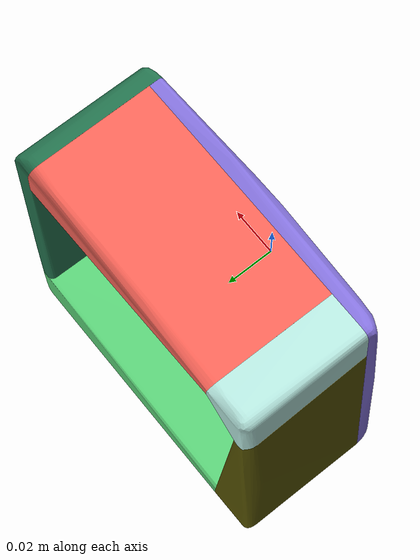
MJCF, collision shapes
<mujoco model="red_toothpaste_basket">
  <default>
    <default class="red_toothpaste_baskset_visual">
      <geom group="2" type="mesh" contype="0" conaffinity="0"/>
    </default>
    <default class="red_toothpaste_baskset_collision">
      <geom group="3" type="mesh"/>
    </default>
  </default>
  <asset>
    <texture type="2d" name="baked_mesh_3946066f_tex0" file="baked_mesh_3946066f_tex0.png"/>
    <material name="red_toothpaste_basket_Texture" texture="baked_mesh_3946066f_tex0" specular="0.5" shininess="0.5"/>
    <mesh file="red_toothpaste_basket.obj"/>
    <mesh file="red_toothpaste_basket_collision_0.obj"/>
    <mesh file="red_toothpaste_basket_collision_1.obj"/>
    <mesh file="red_toothpaste_basket_collision_2.obj"/>
    <mesh file="red_toothpaste_basket_collision_3.obj"/>
    <mesh file="red_toothpaste_basket_collision_4.obj"/>
    <mesh file="red_toothpaste_basket_collision_5.obj"/>
  </asset>
  <worldbody>
    <body name="red_toothpaste_basket" mocap="true">
      <geom material="red_toothpaste_basket_Texture" mesh="red_toothpaste_basket" class="red_toothpaste_baskset_visual"/>
      <geom mesh="red_toothpaste_basket_collision_0" rgba="0.1392035401053221 0.45117648995023096 0.3054434694171544 1" class="red_toothpaste_baskset_collision"/>
      <geom mesh="red_toothpaste_basket_collision_1" rgba="0.5154219615280661 0.44524509316447713 0.8628652333864074 1" class="red_toothpaste_baskset_collision"/>
      <geom mesh="red_toothpaste_basket_collision_2" rgba="0.34287747695839976 0.32920990706743003 0.014125241134398614 1" class="red_toothpaste_baskset_collision"/>
      <geom mesh="red_toothpaste_basket_collision_3" rgba="0.3573136737937427 0.828803835239 0.4736907957130545 1" class="red_toothpaste_baskset_collision"/>
      <geom mesh="red_toothpaste_basket_collision_4" rgba="0.9902814254457839 0.39894846178949206 0.35098080575746937 1" class="red_toothpaste_baskset_collision"/>
      <geom mesh="red_toothpaste_basket_collision_5" rgba="0.7210914103781159 0.9157214145749989 0.8829790906453974 1" class="red_toothpaste_baskset_collision"/>
    </body>
  </worldbody>
</mujoco>
